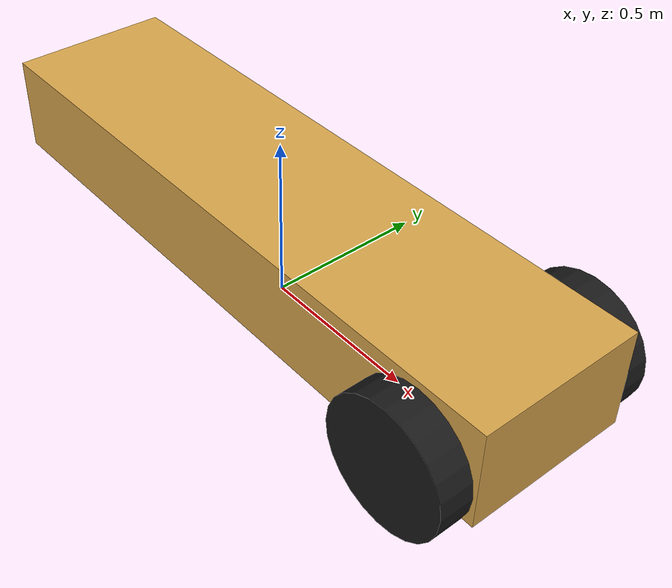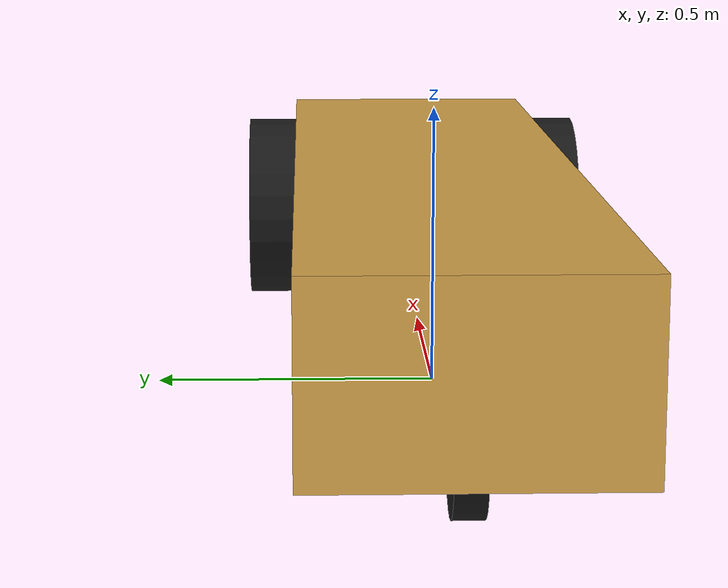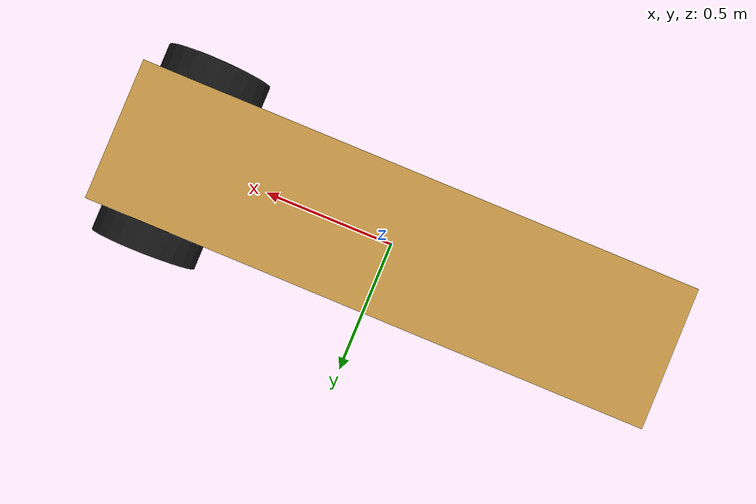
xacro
<?xml version="1.0"?>
<robot name="snail" xmlns:xacro="http://www.ros.org/wiki/xacro">

  <!-- ============================================================
       Geometry parameters
       ============================================================ -->
  <xacro:arg name="use_sim" default="true"/>
  <xacro:arg name="controllers_config" default="$(find snail_bringup)/config/controllers.yaml"/>

  <!-- Overall body -->
  <xacro:property name="body_length" value="2.0"/>
  <xacro:property name="body_width"  value="0.50"/>
  <xacro:property name="body_height" value="0.30"/>
  <xacro:property name="ground_clearance" value="0.10"/>
  <xacro:property name="body_mass" value="50.0"/>

  <!-- Axle placements (measured from front / rear of body) -->
  <xacro:property name="front_axle_offset" value="0.20"/>
  <xacro:property name="rear_axle_offset"  value="0.20"/>
  <xacro:property name="front_track"       value="0.60"/>  <!-- left-right distance between drive wheels -->

  <!-- Wheels -->
  <xacro:property name="front_wheel_radius" value="0.19"/>  <!-- 38 cm diameter -->
  <xacro:property name="front_wheel_width"  value="0.10"/>
  <xacro:property name="front_wheel_mass"   value="3.0"/>

  <xacro:property name="rear_wheel_radius"  value="0.09"/>  <!-- 18 cm diameter -->
  <xacro:property name="rear_wheel_width"   value="0.05"/>
  <xacro:property name="rear_wheel_mass"    value="1.5"/>

  <!-- Steering range (mechanical limits, refine after hardware bringup) -->
  <xacro:property name="steer_limit" value="${pi/4}"/>

  <!-- ============================================================
       Derived
       ============================================================ -->
  <xacro:property name="front_axle_x" value="${ body_length/2 - front_axle_offset}"/>
  <xacro:property name="rear_axle_x"  value="${-body_length/2 + rear_axle_offset}"/>
  <xacro:property name="wheelbase"    value="${front_axle_x - rear_axle_x}"/>

  <!-- ============================================================
       Materials
       ============================================================ -->
  <material name="snail_shell"><color rgba="0.85 0.65 0.30 1.0"/></material>
  <material name="snail_tyre"><color rgba="0.10 0.10 0.10 1.0"/></material>
  <material name="snail_steel"><color rgba="0.55 0.55 0.60 1.0"/></material>

  <!-- ============================================================
       Inertia helpers
       ============================================================ -->
  <xacro:macro name="box_inertia" params="m x y z">
    <inertia ixx="${(1.0/12.0)*m*(y*y + z*z)}" ixy="0" ixz="0"
             iyy="${(1.0/12.0)*m*(x*x + z*z)}" iyz="0"
             izz="${(1.0/12.0)*m*(x*x + y*y)}"/>
  </xacro:macro>

  <xacro:macro name="cylinder_inertia" params="m r l">
    <!-- Cylinder oriented along Y after a rpy="pi/2 0 0" rotation (wheel axis = body Y). -->
    <inertia ixx="${(1.0/12.0)*m*(3*r*r + l*l)}" ixy="0" ixz="0"
             iyy="${(1.0/2.0)*m*r*r}"             iyz="0"
             izz="${(1.0/12.0)*m*(3*r*r + l*l)}"/>
  </xacro:macro>

  <!-- ============================================================
       Wheel macro
       ============================================================ -->
  <xacro:macro name="wheel_link" params="name radius width mass">
    <link name="${name}">
      <visual>
        <origin xyz="0 0 0" rpy="${pi/2} 0 0"/>
        <geometry><cylinder radius="${radius}" length="${width}"/></geometry>
        <material name="snail_tyre"/>
      </visual>
      <collision>
        <origin xyz="0 0 0" rpy="${pi/2} 0 0"/>
        <geometry><cylinder radius="${radius}" length="${width}"/></geometry>
      </collision>
      <inertial>
        <mass value="${mass}"/>
        <xacro:cylinder_inertia m="${mass}" r="${radius}" l="${width}"/>
      </inertial>
    </link>
  </xacro:macro>

  <!-- ============================================================
       Links
       ============================================================ -->
  <link name="base_link"/>

  <link name="chassis_link">
    <visual>
      <origin xyz="0 0 ${ground_clearance + body_height/2}" rpy="0 0 0"/>
      <geometry><box size="${body_length} ${body_width} ${body_height}"/></geometry>
      <material name="snail_shell"/>
    </visual>
    <collision>
      <origin xyz="0 0 ${ground_clearance + body_height/2}" rpy="0 0 0"/>
      <geometry><box size="${body_length} ${body_width} ${body_height}"/></geometry>
    </collision>
    <inertial>
      <origin xyz="0 0 ${ground_clearance + body_height/2}"/>
      <mass value="${body_mass}"/>
      <xacro:box_inertia m="${body_mass}" x="${body_length}" y="${body_width}" z="${body_height}"/>
    </inertial>
  </link>

  <joint name="base_to_chassis" type="fixed">
    <parent link="base_link"/>
    <child  link="chassis_link"/>
    <origin xyz="0 0 0"/>
  </joint>

  <!-- Front drive wheels (2× — broadcast on hardware, both driven in sim) -->
  <xacro:wheel_link name="front_left_wheel_link"
                    radius="${front_wheel_radius}"
                    width="${front_wheel_width}"
                    mass="${front_wheel_mass}"/>
  <joint name="front_left_wheel_joint" type="continuous">
    <parent link="chassis_link"/>
    <child  link="front_left_wheel_link"/>
    <origin xyz="${front_axle_x} ${ front_track/2} ${front_wheel_radius}" rpy="0 0 0"/>
    <axis xyz="0 1 0"/>
    <dynamics damping="0.05" friction="0.0"/>
  </joint>

  <xacro:wheel_link name="front_right_wheel_link"
                    radius="${front_wheel_radius}"
                    width="${front_wheel_width}"
                    mass="${front_wheel_mass}"/>
  <joint name="front_right_wheel_joint" type="continuous">
    <parent link="chassis_link"/>
    <child  link="front_right_wheel_link"/>
    <origin xyz="${front_axle_x} ${-front_track/2} ${front_wheel_radius}" rpy="0 0 0"/>
    <axis xyz="0 1 0"/>
    <dynamics damping="0.05" friction="0.0"/>
  </joint>

  <!-- Rear steering column (the bit that rotates about Z when commanded) -->
  <link name="rear_steer_link">
    <visual>
      <origin xyz="0 0 ${-(ground_clearance - rear_wheel_radius)/2}"/>
      <geometry><cylinder radius="0.02" length="${ground_clearance - rear_wheel_radius}"/></geometry>
      <material name="snail_steel"/>
    </visual>
    <inertial>
      <mass value="0.5"/>
      <inertia ixx="0.001" ixy="0" ixz="0" iyy="0.001" iyz="0" izz="0.001"/>
    </inertial>
  </link>

  <joint name="rear_steer_joint" type="revolute">
    <parent link="chassis_link"/>
    <child  link="rear_steer_link"/>
    <origin xyz="${rear_axle_x} 0 ${ground_clearance}" rpy="0 0 0"/>
    <axis xyz="0 0 -1"/>
    <limit lower="${-steer_limit}" upper="${steer_limit}" effort="40.0" velocity="2.0"/>
    <dynamics damping="0.5" friction="0.0"/>
  </joint>

  <!-- Rear wheel (free-spinning, attached to the steering column) -->
  <xacro:wheel_link name="rear_wheel_link"
                    radius="${rear_wheel_radius}"
                    width="${rear_wheel_width}"
                    mass="${rear_wheel_mass}"/>
  <joint name="rear_wheel_joint" type="continuous">
    <parent link="rear_steer_link"/>
    <child  link="rear_wheel_link"/>
    <origin xyz="0 0 ${-(ground_clearance - rear_wheel_radius)}" rpy="0 0 0"/>
    <axis xyz="0 1 0"/>
    <dynamics damping="0.05" friction="0.0"/>
  </joint>

  <!-- ============================================================
       ros2_control + Gazebo
       ============================================================ -->
  <xacro:include filename="snail.ros2_control.xacro"/>
  <xacro:include filename="snail.gazebo.xacro"/>

</robot>
